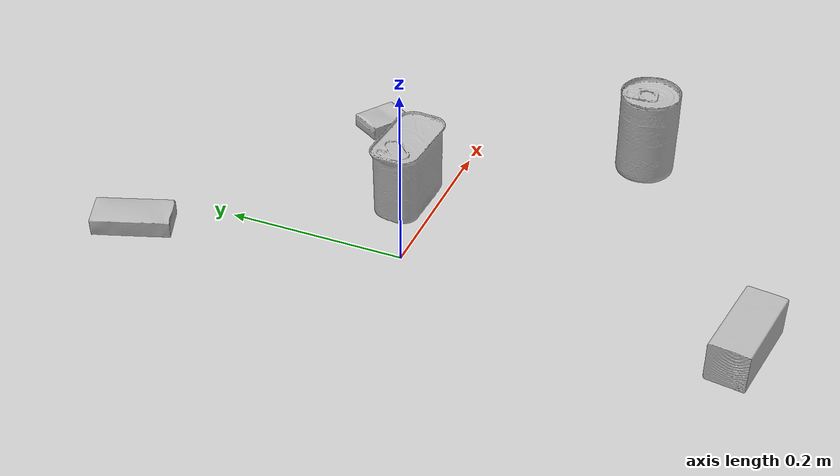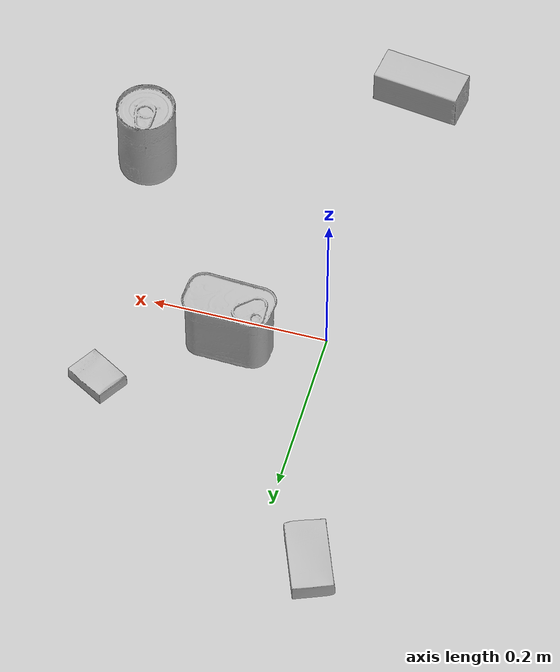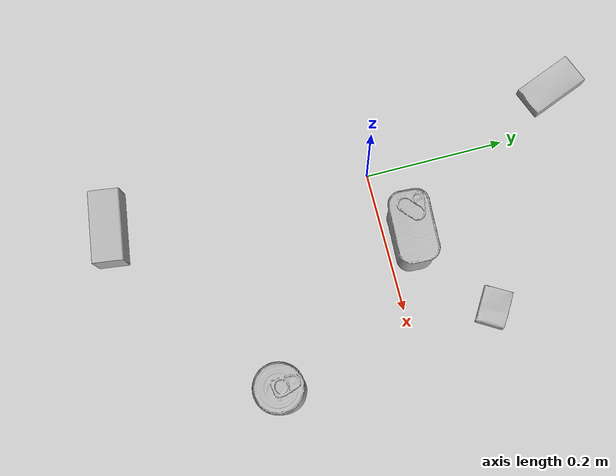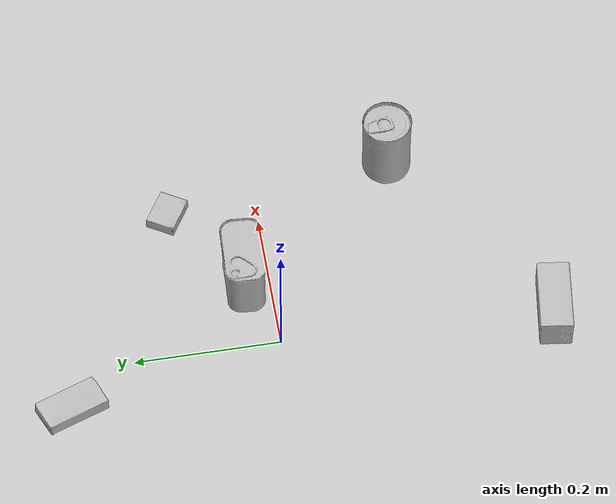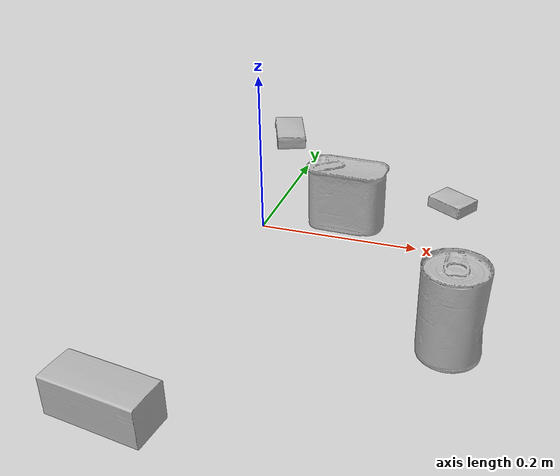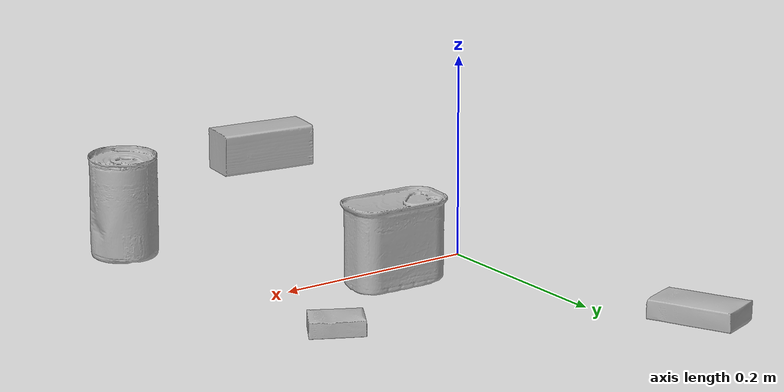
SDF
<sdf version="1.4">
  <world name="default">
    <light name="light1" type="point">
      <pose>0 0 1 0 0 0</pose>
      <diffuse>3 3 3 1</diffuse>
      <specular>3 3 3 1</specular>
    </light>
    <light name="light2" type="point">
      <pose>0 0.5 2 0 0 0</pose>
      <diffuse>1 1 1 1</diffuse>
      <specular>1 1 1 1</specular>
    </light>
    <light name="light3" type="point">
      <pose>0 0.5 2 0 0 0</pose>
      <diffuse>3 3 3 1</diffuse>
      <specular>3 3 3 1</specular>
    </light>
    <scene>
      <ambient>0.7 0.7 0.7</ambient>
    </scene>
    <model name="box1">
      <link name="link_box1">
        <collision name="default">
          <geometry>
            <mesh>
              <uri>model://sugar_box/collision_meshes/collision.obj</uri>
              <scale>0.5 0.5 0.5</scale>
            </mesh>
          </geometry>
          <surface>
            <friction>
              <ode>
                <mu>0.5</mu>
                <mu2>0.5</mu2>
              </ode>
            </friction>
          <contact>
        <ode>
            <max_vel>0</max_vel>
            <min_depth>0.0001</min_depth>
            <kp>1e8</kp>
        </ode>
    </contact></surface>
        </collision>
        <visual name="default">
          <geometry>
            <mesh>
              <uri>model://sugar_box/visual_meshes/visual.dae</uri>
              <scale>0.5 0.5 0.5</scale>
            </mesh>
          </geometry>
        </visual>
        <inertial>
          <mass>0.048160675913095474</mass>
          <pose>0.0005171863595023751 1.924554817378521e-05 -0.00018182402709499002 -0.0004046258638373534 0.0010506635215919557 0.0026153787891515894</pose>
          <inertia>
            <ixx>1.0031835e-05</ixx>
            <iyy>3.2424945e-05</iyy>
            <izz>3.8816543e-05</izz>
            <ixy>0</ixy>
            <ixz>0</ixz>
            <iyz>0</iyz>
          </inertia>
        </inertial>
      </link>
      <pose>-0.05980655178427696 0.29144448041915894 0.011399299837648869 0.0007753292469982432 -0.023432546807920004 1.9403793274408323</pose>
    </model>
    <model name="box2">
      <link name="link_box2">
        <collision name="default">
          <geometry>
            <mesh>
              <uri>model://cracker_box/collision_meshes/collision.obj</uri>
              <scale>0.25 0.25 0.25</scale>
            </mesh>
          </geometry>
          <surface>
            <friction>
              <ode>
                <mu>0.5</mu>
                <mu2>0.5</mu2>
              </ode>
            </friction>
          <contact>
        <ode>
            <max_vel>0</max_vel>
            <min_depth>0.0001</min_depth>
            <kp>1e8</kp>
        </ode>
    </contact></surface>
        </collision>
        <visual name="default">
          <geometry>
            <mesh>
              <uri>model://cracker_box/visual_meshes/visual.dae</uri>
              <scale>0.25 0.25 0.25</scale>
            </mesh>
          </geometry>
        </visual>
        <inertial>
          <mass>0.047952666878700256</mass>
          <pose>0.00023660370789002627 6.358561950037256e-05 -0.0004257383698131889 -0.0003162075404896153 -0.011106488669099107 0.002546795234185617</pose>
          <inertia>
            <ixx>7.623136e-06</ixx>
            <iyy>1.2587296e-05</iyy>
            <izz>1.7963224e-05</izz>
            <ixy>0</ixy>
            <ixz>0</ixz>
            <iyz>0</iyz>
          </inertia>
        </inertial>
      </link>
      <pose>0.22822025418281555 0.12180538475513458 0.009120452217757702 -0.011787823377988518 -0.007367278882222732 2.600461571983227</pose>
    </model>
    <model name="box3">
      <link name="link_box3">
        <collision name="default">
          <geometry>
            <mesh>
              <uri>model://wood_block/collision_meshes/collision.obj</uri>
              <scale>0.5 0.5 0.5</scale>
            </mesh>
          </geometry>
          <surface>
            <friction>
              <ode>
                <mu>0.5</mu>
                <mu2>0.5</mu2>
              </ode>
            </friction>
          <contact>
        <ode>
            <max_vel>0</max_vel>
            <min_depth>0.0001</min_depth>
            <kp>1e8</kp>
        </ode>
    </contact></surface>
        </collision>
        <visual name="default">
          <geometry>
            <mesh>
              <uri>model://wood_block/visual_meshes/visual.dae</uri>
              <scale>0.5 0.5 0.5</scale>
            </mesh>
          </geometry>
        </visual>
        <inertial>
          <mass>0.27162742614746094</mass>
          <pose>-2.9066577553749084e-06 -0.000285404734313488 0.00013204291462898254 -0.05220780121661256 -0.005192696561201931 -0.006861379819720353</pose>
          <inertia>
            <ixx>9.086965e-05</ixx>
            <iyy>0.00028705722</iyy>
            <izz>0.0002859835</izz>
            <ixy>0</ixy>
            <ixz>0</ixz>
            <iyz>0</iyz>
          </inertia>
        </inertial>
      </link>
      <pose>-0.012982724234461784 -0.3708043396472931 0.022629274055361748 -0.005208590655912796 0.0057186815685689365 3.003915212436436</pose>
    </model>
    <model name="can1">
      <link name="link_can1">
        <collision name="default">
          <geometry>
            <mesh>
              <uri>model://tomato_soup_can/collision_meshes/collision.obj</uri>
              <scale>1.0 1.0 1.0</scale>
            </mesh>
          </geometry>
          <surface>
            <friction>
              <ode>
                <mu>0.5</mu>
                <mu2>0.5</mu2>
              </ode>
            </friction>
          <contact>
        <ode>
            <max_vel>0</max_vel>
            <min_depth>0.0001</min_depth>
            <kp>1e8</kp>
        </ode>
    </contact></surface>
        </collision>
        <visual name="default">
          <geometry>
            <mesh>
              <uri>model://tomato_soup_can/visual_meshes/visual.dae</uri>
              <scale>1.0 1.0 1.0</scale>
            </mesh>
          </geometry>
        </visual>
        <inertial>
          <mass>0.33680883049964905</mass>
          <pose>0.0001265227037947625 0.0001080552683561109 -0.0017973986687138677 0.007020065933643549 0.0004229964102555597 -0.009903579397299064</pose>
          <inertia>
            <ixx>0.00036928226</ixx>
            <iyy>0.0003671481</iyy>
            <izz>0.00019139561</izz>
            <ixy>0</ixy>
            <ixz>0</ixz>
            <iyz>0</iyz>
          </inertia>
        </inertial>
      </link>
      <pose>0.2653326392173767 -0.19013315439224243 0.05127401277422905 -4.310579550235023e-07 -4.045726196946685e-07 3.012662121969067</pose>
    </model>
    <model name="can2">
      <link name="link_can2">
        <collision name="default">
          <geometry>
            <mesh>
              <uri>model://potted_meat_can/collision_meshes/collision.obj</uri>
              <scale>1.0 1.0 1.0</scale>
            </mesh>
          </geometry>
          <surface>
            <friction>
              <ode>
                <mu>0.5</mu>
                <mu2>0.5</mu2>
              </ode>
            </friction>
          <contact>
        <ode>
            <max_vel>0</max_vel>
            <min_depth>0.0001</min_depth>
            <kp>1e8</kp>
        </ode>
    </contact></surface>
        </collision>
        <visual name="default">
          <geometry>
            <mesh>
              <uri>model://potted_meat_can/visual_meshes/visual.dae</uri>
              <scale>1.0 1.0 1.0</scale>
            </mesh>
          </geometry>
        </visual>
        <inertial>
          <mass>0.5009446144104004</mass>
          <pose>0.00022888141393195838 -5.9891164710279554e-05 -0.0006367440801113844 -0.028093347044227477 -0.007232596108467961 0.015406262357490775</pose>
          <inertia>
            <ixx>0.0006444129</ixx>
            <iyy>0.0003915297</iyy>
            <izz>0.00046868768</izz>
            <ixy>0</ixy>
            <ixz>0</ixz>
            <iyz>0</iyz>
          </inertia>
        </inertial>
      </link>
      <pose>0.10202273726463318 0.03526242822408676 0.042128000408411026 5.443408137316881e-09 -5.12179406321794e-07 -1.6289368946119878</pose>
    </model>
  <physics type="ode">
      <max_contacts>50</max_contacts>
      <ode>
        <solver>
          <type>quick</type>
          <iters>75</iters>
        </solver>
        <constraints>
          <contact_max_correcting_vel>0</contact_max_correcting_vel>
          <contact_surface_layer>0</contact_surface_layer>
        </constraints>
      </ode>
    </physics></world>
</sdf>
